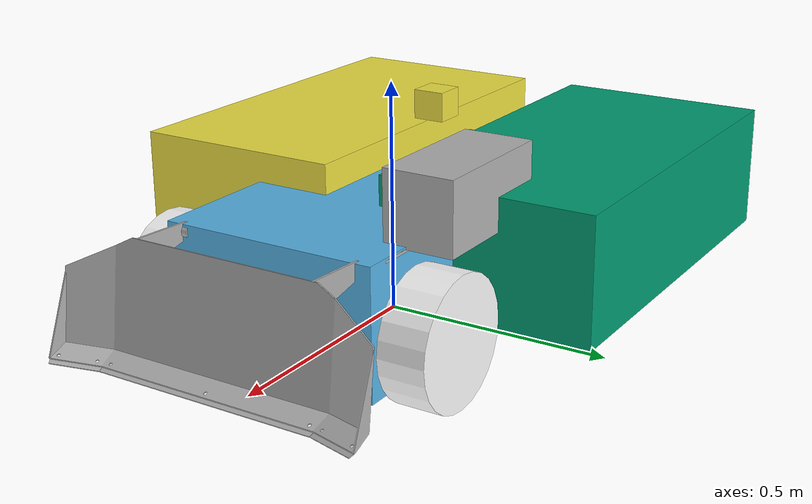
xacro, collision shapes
<?xml version="1.0"?>
<robot name="msd700_blade" xmlns:xacro="http://ros.org/wiki/xacro">

<!-- ================= INCLUDE ================= -->
    <xacro:include filename="$(find msd700_robot_description)/isaac_sim/urdf/commons/msd700_wheel.xacro"/>
    <xacro:include filename="$(find msd700_robot_description)/isaac_sim/urdf/commons/msd700_base_only.xacro"/>
    <xacro:include filename="$(find msd700_robot_description)/isaac_sim/urdf/commons/msd700_track.xacro"/>
    <xacro:include filename="$(find msd700_robot_description)/isaac_sim/urdf/attachment/msd700_blade.xacro"/>
    <xacro:include filename="$(find msd700_robot_description)/isaac_sim/urdf/sensors/sensor_livox_360.xacro"/>

    <xacro:property name="box_weight"       value="0.85" />
    <xacro:property name="box_width"        value="0.15" />
    <xacro:property name="box_length"       value="0.3" />
    <xacro:property name="box_height"       value="0.15" />

    <xacro:property name="base_width"       value="0.47" />
    <xacro:property name="base_length"      value="0.866" />
    <xacro:property name="base_height"      value="0.271" />

<!-- ================= BASE ================= -->
    <link name="base_footprint"/>
    <xacro:base name="base" parent="base_footprint" xyz="0 0 0.05" rpy="0 0 0"/>

<!-- ================= TRACK ================= -->
    <xacro:track name="track_left"  parent="base_link" xyz="-0.285 0.30 0.065" rpy="0 0 0"/>
    <xacro:track name="track_right" parent="base_link" xyz="-0.285 -0.30 0.065" rpy="0 0 0"/>

<!-- ================= WHEELS ================= -->
    <xacro:wheel name="wheel_fl" parent="base_link" xyz="0.305 0.30 0.065" rpy="0 0 0"/>
    <xacro:wheel name="wheel_fr" parent="base_link" xyz="0.305 -0.30 0.065" rpy="0 0 0"/>
    <xacro:wheel name="wheel_rl" parent="base_link" xyz="-0.285 0.30 0.065" rpy="0 0 0"/>
    <xacro:wheel name="wheel_rr" parent="base_link" xyz="-0.285 -0.30 0.065" rpy="0 0 0"/>

<!-- ================= Blade ================= -->
    <xacro:blade name="blade" parent="base_link" xyz="0.1 0 0.23" rpy="0 0 0"/>

<!-- ================= SENSOR ================= -->
    <joint name="sensor_box_joint" type="fixed">
        <parent link="base_link"/>
        <child link="sensor_box_link"/>
        <origin xyz="${0.433-(box_length/2)-0.2} ${0.205-(box_width/2)} 0.23" rpy="0 0 0"/>
    </joint>

    <link name="sensor_box_link">
        <visual>
            <origin xyz="0 0 0.075" rpy="0 0 0"/>
            <geometry>
                <box size="${box_length} ${box_width} ${box_height}"/>
            </geometry>
            <material name="Gray">
                <color rgba="0.7 0.7 0.7 1.0"/>
            </material>
        </visual>

        <collision>
            <origin xyz="${0.433-(box_length/2)-0.2} ${0.205-(box_width/2)} 0.075" rpy="0 0 0"/>
            <geometry>
                <box size="${box_length} ${box_width} ${box_height}"/>
            </geometry>
            <material name="Gray">
                <color rgba="0.7 0.7 0.7 1.0"/>
            </material>
        </collision>

        <inertial>
            <origin xyz="0 0 0.075" rpy="0 0 0"/>
            <mass value="${box_weight}"/>
            <inertia
                    ixx="${(box_weight/12)*(box_width*box_width + box_height*box_height)}"   ixy="0.0" ixz="0.0"
                    iyy="${(box_weight/12)*(box_length*box_length + box_height*box_height)}" iyz="0.0"
                    izz="${(box_weight/12)*(box_length*box_length + box_width*box_width)}"/>
        </inertial>
    </link>

    <xacro:livox name="livox" parent="sensor_box_link" xyz="-${(box_length/2)-(0.065/2)} -${(box_width/2)-(0.065/2)} ${box_height+0.060/2}" rpy="0 0 0"/>
</robot>

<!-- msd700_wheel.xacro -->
<robot xmlns:xacro="http://ros.org/wiki/xacro">

    <xacro:property name="wheel_weight"  value="2" />
    <xacro:property name="wheel_diameter"  value="0.271" />
    <xacro:property name="wheel_length"  value="0.100" />
    <xacro:macro name="wheel" params="
        name
        parent
        xyz
        rpy">

        <!-- Joint -->
        <joint name="${name}_joint" type="continuous">
            <parent link="${parent}"/>
            <child link="${name}_link"/>
            <origin xyz="${xyz}" rpy="${rpy}"/>
            <axis xyz="0 1 0"/>
        </joint>

        <!-- Link -->
        <link name="${name}_link">
            <visual>
                <origin xyz="${(wheel_diameter/2)-0.025} ${-(wheel_length/2)+0.01} ${-((wheel_diameter/2))+0.025}" rpy="0 0 ${pi/2}"/>
                <geometry>
                    <mesh filename="package://msd700_robot_description/isaac_sim/meshes/wheel.stl"
                            scale="0.001 0.001 0.001"/>
                </geometry>
                <material name="White">
                    <color rgba="1 1 1 1.0"/>
                </material>
            </visual>

            <collision>
                <origin xyz="0 0 0" rpy="${pi/2} ${pi/2} 0"/>
                <geometry>
                    <cylinder radius="${(wheel_diameter/2)}" length="${wheel_length}"/>
                </geometry>
            </collision>

            <inertial>
                <origin xyz="0 0 0" rpy="${pi/2} 0 0"/>
                <mass value="${wheel_weight}"/>
                <inertia
                    ixx="${1/12*wheel_weight*(3*(wheel_diameter/2)*(wheel_diameter/2) + wheel_length * wheel_length)}"
                    iyy="${1/12*wheel_weight*(3*(wheel_diameter/2)*(wheel_diameter/2) + wheel_length * wheel_length)}"
                    izz="${wheel_weight/2*(wheel_diameter/2)*(wheel_diameter/2)}"
                    ixy="0" ixz="0" iyz="0"/>
            </inertial>
        </link>
    </xacro:macro>
</robot>

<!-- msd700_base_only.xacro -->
<robot xmlns:xacro="http://ros.org/wiki/xacro">
    <!-- From MCLA015B spec -->
    <xacro:property name="base_weight"  value="121.9" />
    <xacro:property name="base_width"  value="0.47" />
    <xacro:property name="base_length"   value="0.866" />
    <xacro:property name="base_height"  value="0.271" />
    <xacro:macro name="base" params="
        name
        parent
        xyz
        rpy">

        <!-- Joint -->
        <joint name="${name}_joint" type="fixed">
            <parent link="${parent}"/>
            <child link="${name}_link"/>
            <origin xyz="${xyz}" rpy="${rpy}"/>
        </joint>

        <!-- Link -->
        <link name="${name}_link">
            <visual>
                <origin xyz="0 0 0" rpy="0 0 ${pi/2}"/>
                <geometry>
                    <mesh filename="package://msd700_robot_description/isaac_sim/meshes/base_only.dae"
                        scale="1 1 1"/>
                </geometry>
            </visual>
            <collision>
                <origin xyz="0 0 0.1" rpy="0 0 0"/>
                <geometry>
                    <box size="${base_length} ${base_width} ${base_height}"/>
                </geometry>
            </collision>
            <inertial>
                <mass value="${base_weight}"/>
                <origin xyz="0 0 0.1" rpy="0 0 0"/>
                <!-- the inertial matrix approximated as a box -->
                <!-- https://en.wikipedia.org/wiki/List_of_moments_of_inertia -->
                <inertia
                    ixx="${(base_weight/12)*(base_width*base_width + base_height*base_height)}"   ixy="0.0" ixz="0.0"
                    iyy="${(base_weight/12)*(base_length*base_length + base_height*base_height)}" iyz="0.0"
                    izz="${(base_weight/12)*(base_length*base_length + base_width*base_width)}"/>
            </inertial>
        </link>
    </xacro:macro>
</robot>

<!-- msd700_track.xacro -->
<robot xmlns:xacro="http://ros.org/wiki/xacro">
    <!-- From MCLA015B spec -->
    <xacro:property name="base_weight"  value="121.9" />
    <xacro:property name="base_width"  value="0.47" />
    <xacro:property name="base_length"   value="0.866" />
    <xacro:property name="base_height"  value="0.271" />
    <xacro:macro name="track" params="
        name
        parent
        xyz
        rpy">

        <!-- Joint -->
        <joint name="${name}_joint" type="fixed">
            <parent link="${parent}"/>
            <child link="${name}_link"/>
            <origin xyz="${xyz}" rpy="${rpy}"/>
        </joint>

        <!-- Link -->
        <link name="${name}_link">
            <visual>
                <origin xyz="0 0 0" rpy="0 0 ${pi}"/>
                <geometry>
                    <mesh filename="package://msd700_robot_description/isaac_sim/meshes/left_track.dae"
                        scale="1 1 1"/>
                </geometry>
            </visual>
            <collision>
                <origin xyz="0 0 0.1" rpy="0 0 0"/>
                <geometry>
                    <box size="${base_length} ${base_width} ${base_height}"/>
                </geometry>
            </collision>
            <inertial>
                <mass value="${base_weight}"/>
                <origin xyz="0 0 0.1" rpy="0 0 0"/>
                <!-- the inertial matrix approximated as a box -->
                <!-- https://en.wikipedia.org/wiki/List_of_moments_of_inertia -->
                <inertia
                    ixx="${(base_weight/12)*(base_width*base_width + base_height*base_height)}"   ixy="0.0" ixz="0.0"
                    iyy="${(base_weight/12)*(base_length*base_length + base_height*base_height)}" iyz="0.0"
                    izz="${(base_weight/12)*(base_length*base_length + base_width*base_width)}"/>
            </inertial>
        </link>
    </xacro:macro>
</robot>

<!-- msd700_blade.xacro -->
<robot xmlns:xacro="http://ros.org/wiki/xacro">
    <!-- From MCLA015B spec -->
    <xacro:property name="blade_weight"  value="5" />
    <xacro:property name="blade_length"  value="0.06" />
    <xacro:property name="blade_width"   value="0.700" />
    <xacro:property name="blade_height"  value="0.255" />
    <xacro:property name="blade_base_weight"  value="8" />
    <xacro:property name="blade_base_length"  value="0.566" />
    <xacro:property name="blade_base_width"   value="0.47" />
    <xacro:property name="blade_base_height"  value="0.01" />

    <xacro:macro name="blade" params="
        name
        parent
        xyz
        rpy">

        <joint name="${name}_base_joint" type="fixed">
            <parent link="${parent}"/>
            <child link="${name}_base_link"/>
            <origin xyz="${xyz}" rpy="${rpy}"/>
        </joint>

        <link name="${name}_base_link">
            <visual>
                <origin xyz="0 0 0" rpy="${pi/2} 0 ${pi/2}"/>
                <geometry>
                    <mesh filename="package://msd700_robot_description/isaac_sim/meshes/blade_base.dae"
                        scale="1 1 1"/>
                </geometry>
                <material name="Gray">
                    <color rgba="0.7 0.7 0.7 1.0"/>
                </material>
            </visual>
            <collision>
                <origin xyz="0 0 0" rpy="0 0 0"/>
                <geometry>
                    <box size="${blade_base_length} ${blade_base_width} ${blade_base_height}"/>
                </geometry>
            </collision>
            <inertial>
                <origin xyz="0 0 0" rpy="0 0 0"/>
                <mass value="${blade_base_weight}"/>
                <inertia
                    ixx="${(blade_base_weight/12)*(blade_base_width*blade_base_width + blade_base_height*blade_base_height)}"   ixy="0.0" ixz="0.0"
                    iyy="${(blade_base_weight/12)*(blade_base_length*blade_base_length + blade_base_height*blade_base_height)}" iyz="0.0"
                    izz="${(blade_base_weight/12)*(blade_base_length*blade_base_length + blade_base_width*blade_base_width)}"/>
            </inertial>
        </link>

        <joint name="${name}_joint" type="revolute">
            <parent link="${name}_base_link"/>
            <child link="${name}_link"/>
            <origin xyz="0.32 0 0" rpy="0 0 0"/>
            <axis xyz="0 1 0"/>
            <limit lower="0.0" upper="-0.5" effort="0.0" velocity="0.0"/>
        </joint>

        <link name="${name}_link">
            <visual>
                <origin xyz="-0.315 0 0" rpy="${pi/2} 0 ${pi/2}"/>
                <geometry>
                    <mesh filename="package://msd700_robot_description/isaac_sim/meshes/blade.dae"
                        scale="1 1 1"/>
                </geometry>
                <material name="Gray">
                    <color rgba="0.7 0.7 0.7 1.0"/>
                </material>
            </visual>

            <collision>
                <origin xyz="-0.315 0 0" rpy="${pi/2} 0 ${pi/2}"/>
                <geometry>
                    <mesh filename="package://msd700_robot_description/isaac_sim/meshes/blade.dae"
                        scale="1 1 1"/>
                </geometry>
            </collision>

            <inertial>
                <origin xyz="0.2 0 -0.12" rpy="0 0 0"/>
                <mass value="${blade_weight}"/>
                <inertia
                    ixx="${(blade_weight/12)*(blade_width*blade_width + blade_height*blade_height)}"   ixy="0.0" ixz="0.0"
                    iyy="${(blade_weight/12)*(blade_length*blade_length + blade_height*blade_height)}" iyz="0.0"
                    izz="${(blade_weight/12)*(blade_length*blade_length + blade_width*blade_width)}"/>
            </inertial>
        </link>
    </xacro:macro>
</robot>

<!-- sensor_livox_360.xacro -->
<robot xmlns:xacro="http://ros.org/wiki/xacro">
    <!-- From MCLA015B spec -->
    <xacro:property name="livox_weight"  value="0.265" />
    <xacro:property name="livox_width"  value="0.065" />
    <xacro:property name="livox_length"   value="0.065" />
    <xacro:property name="livox_height"  value="0.060" />
    <xacro:macro name="livox" params="
        name
        parent
        xyz
        rpy">

        <!-- Joint -->
        <joint name="${name}_joint" type="fixed">
            <parent link="${parent}"/>
            <child link="${name}_link"/>
            <origin xyz="${xyz}" rpy="${rpy}"/>
        </joint>

        <!-- Link -->
        <link name="${name}_link">
            <visual>
                <origin xyz="0 0 0" rpy="0 0 -${pi/2}"/>
                <geometry>
                    <mesh filename="package://msd700_robot_description/isaac_sim/meshes/livox_360.dae"
                        scale="1 1 1"/>
                </geometry>
            </visual>
            <collision>
                <origin xyz="0 0 0" rpy="0 0 0"/>
                <geometry>
                    <box size="${livox_length} ${livox_width} ${livox_height}"/>
                </geometry>
            </collision>
            <inertial>
                <mass value="${livox_weight}"/>
                <origin xyz="0 0 0" rpy="0 0 0"/>
                <!-- the inertial matrix approximated as a box -->
                <!-- https://en.wikipedia.org/wiki/List_of_moments_of_inertia -->
                <inertia
                    ixx="${(livox_weight/12)*(livox_width*livox_width + livox_height*livox_height)}"   ixy="0.0" ixz="0.0"
                    iyy="${(livox_weight/12)*(livox_length*livox_length + livox_height*livox_height)}" iyz="0.0"
                    izz="${(livox_weight/12)*(livox_length*livox_length + livox_width*livox_width)}"/>
            </inertial>
        </link>
    </xacro:macro>
</robot>
